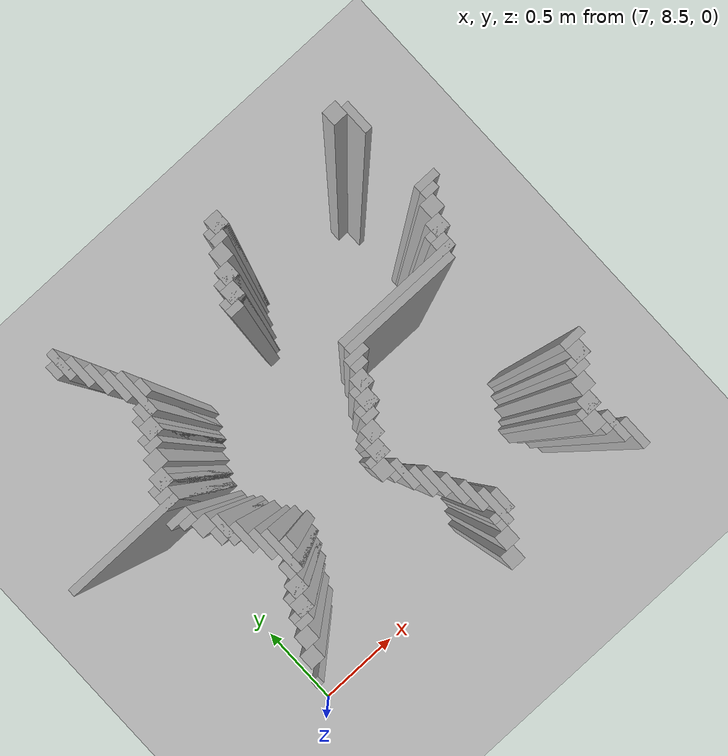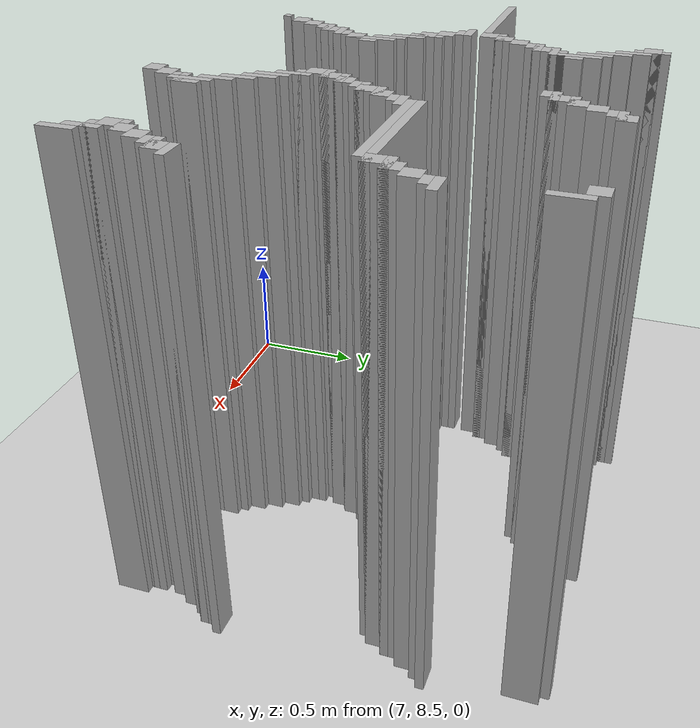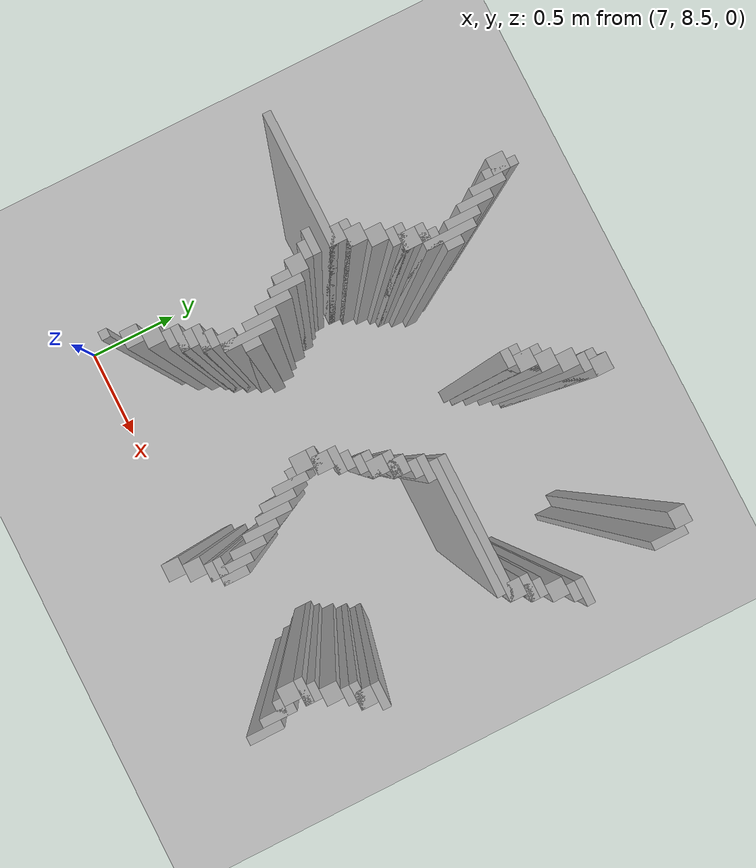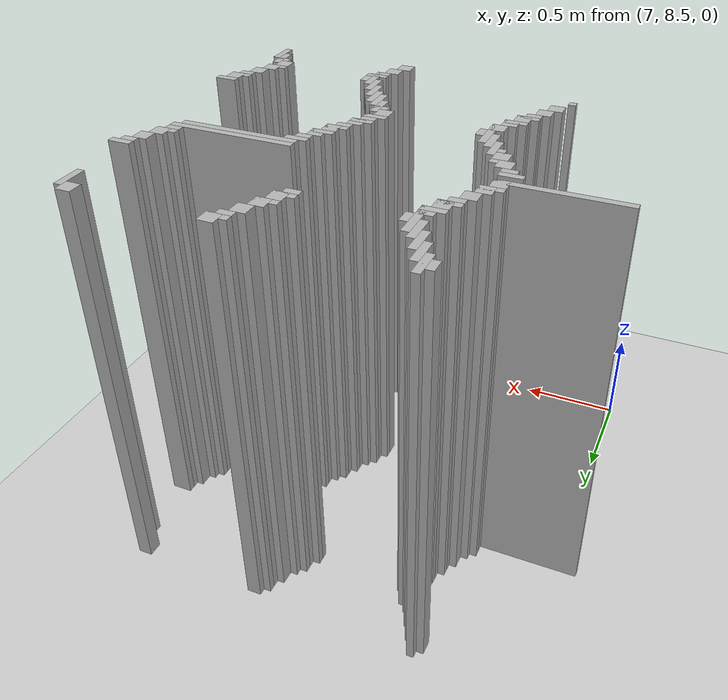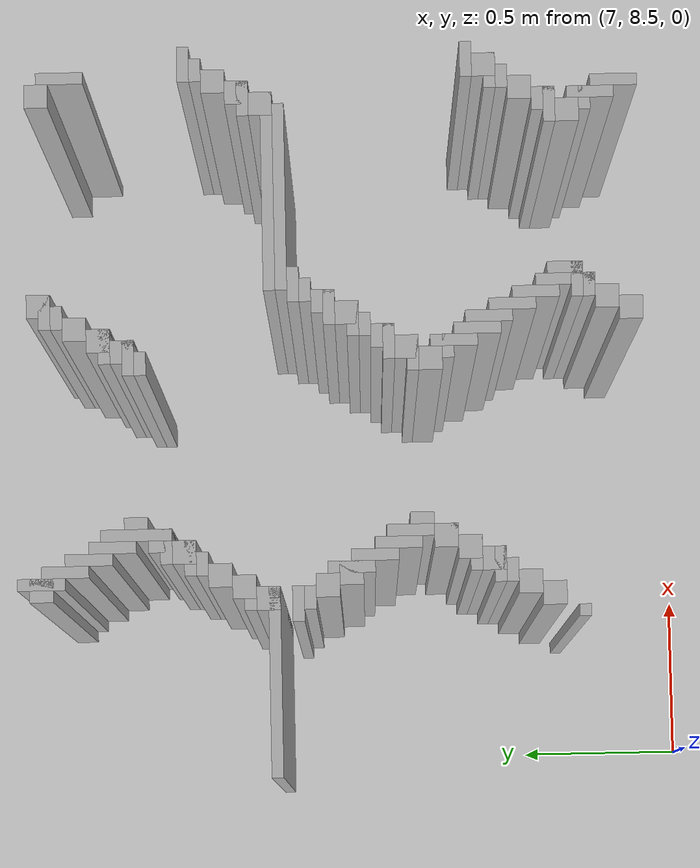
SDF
<sdf version="1.6">
 <world name="slam_world">
  <model name="ground_plane">
   <static>true</static>
   <link name="link">
    <collision name="collision">
     <geometry><plane><normal>0 0 1</normal><size>100 100</size></plane></geometry>
    </collision>
    <visual name="visual">
     <geometry><plane><normal>0 0 1</normal><size>100 100</size></plane></geometry>
     <material>
      <ambient>0.8 0.8 0.8 1</ambient>
      <diffuse>0.8 0.8 0.8 1</diffuse>
      <specular>0.8 0.8 0.8 1</specular>
     </material>
    </visual>
   </link>
  </model>
  <model name="wall_2324">
   <static>true</static>
   <pose>7.465197215777262 10.475638051044083 1.0 0 0 0</pose>
   <link name="link">
    <collision name="collision">
     <geometry><box><size>0.03480278422273782 0.13921113689095127 2.0</size></box></geometry>
    </collision>
    <visual name="visual">
     <geometry><box><size>0.03480278422273782 0.13921113689095127 2.0</size></box></geometry>
     <material><ambient>0.5 0.5 0.5 1</ambient><diffuse>0.7 0.7 0.7 1</diffuse></material>
    </visual>
   </link>
  </model>
  <model name="wall_2339">
   <static>true</static>
   <pose>7.447795823665893 10.475638051044083 1.0 0 0 0</pose>
   <link name="link">
    <collision name="collision">
     <geometry><box><size>0.06960556844547564 0.06960556844547564 2.0</size></box></geometry>
    </collision>
    <visual name="visual">
     <geometry><box><size>0.06960556844547564 0.06960556844547564 2.0</size></box></geometry>
     <material><ambient>0.5 0.5 0.5 1</ambient><diffuse>0.7 0.7 0.7 1</diffuse></material>
    </visual>
   </link>
  </model>
  <model name="wall_2340">
   <static>true</static>
   <pose>8.2830626450116 10.475638051044083 1.0 0 0 0</pose>
   <link name="link">
    <collision name="collision">
     <geometry><box><size>0.06960556844547564 0.06960556844547564 2.0</size></box></geometry>
    </collision>
    <visual name="visual">
     <geometry><box><size>0.06960556844547564 0.06960556844547564 2.0</size></box></geometry>
     <material><ambient>0.5 0.5 0.5 1</ambient><diffuse>0.7 0.7 0.7 1</diffuse></material>
    </visual>
   </link>
  </model>
  <model name="wall_2341">
   <static>true</static>
   <pose>8.909512761020881 10.475638051044083 1.0 0 0 0</pose>
   <link name="link">
    <collision name="collision">
     <geometry><box><size>0.06960556844547564 0.06960556844547564 2.0</size></box></geometry>
    </collision>
    <visual name="visual">
     <geometry><box><size>0.06960556844547564 0.06960556844547564 2.0</size></box></geometry>
     <material><ambient>0.5 0.5 0.5 1</ambient><diffuse>0.7 0.7 0.7 1</diffuse></material>
    </visual>
   </link>
  </model>
  <model name="wall_2354">
   <static>true</static>
   <pose>7.5 10.406032482598608 1.0 0 0 0</pose>
   <link name="link">
    <collision name="collision">
     <geometry><box><size>0.03480278422273782 0.13921113689095127 2.0</size></box></geometry>
    </collision>
    <visual name="visual">
     <geometry><box><size>0.03480278422273782 0.13921113689095127 2.0</size></box></geometry>
     <material><ambient>0.5 0.5 0.5 1</ambient><diffuse>0.7 0.7 0.7 1</diffuse></material>
    </visual>
   </link>
  </model>
  <model name="wall_2355">
   <static>true</static>
   <pose>8.265661252900232 10.458236658932714 1.0 0 0 0</pose>
   <link name="link">
    <collision name="collision">
     <geometry><box><size>0.10440835266821345 0.03480278422273782 2.0</size></box></geometry>
    </collision>
    <visual name="visual">
     <geometry><box><size>0.10440835266821345 0.03480278422273782 2.0</size></box></geometry>
     <material><ambient>0.5 0.5 0.5 1</ambient><diffuse>0.7 0.7 0.7 1</diffuse></material>
    </visual>
   </link>
  </model>
  <model name="wall_2356">
   <static>true</static>
   <pose>8.961716937354987 10.406032482598608 1.0 0 0 0</pose>
   <link name="link">
    <collision name="collision">
     <geometry><box><size>0.03480278422273782 0.13921113689095127 2.0</size></box></geometry>
    </collision>
    <visual name="visual">
     <geometry><box><size>0.03480278422273782 0.13921113689095127 2.0</size></box></geometry>
     <material><ambient>0.5 0.5 0.5 1</ambient><diffuse>0.7 0.7 0.7 1</diffuse></material>
    </visual>
   </link>
  </model>
  <model name="wall_2364">
   <static>true</static>
   <pose>8.248259860788863 10.423433874709977 1.0 0 0 0</pose>
   <link name="link">
    <collision name="collision">
     <geometry><box><size>0.06960556844547564 0.03480278422273782 2.0</size></box></geometry>
    </collision>
    <visual name="visual">
     <geometry><box><size>0.06960556844547564 0.03480278422273782 2.0</size></box></geometry>
     <material><ambient>0.5 0.5 0.5 1</ambient><diffuse>0.7 0.7 0.7 1</diffuse></material>
    </visual>
   </link>
  </model>
  <model name="wall_2374">
   <static>true</static>
   <pose>7.534802784222737 10.336426914153131 1.0 0 0 0</pose>
   <link name="link">
    <collision name="collision">
     <geometry><box><size>0.03480278422273782 0.13921113689095127 2.0</size></box></geometry>
    </collision>
    <visual name="visual">
     <geometry><box><size>0.03480278422273782 0.13921113689095127 2.0</size></box></geometry>
     <material><ambient>0.5 0.5 0.5 1</ambient><diffuse>0.7 0.7 0.7 1</diffuse></material>
    </visual>
   </link>
  </model>
  <model name="wall_2375">
   <static>true</static>
   <pose>8.213457076566124 10.37122969837587 1.0 0 0 0</pose>
   <link name="link">
    <collision name="collision">
     <geometry><box><size>0.06960556844547564 0.06960556844547564 2.0</size></box></geometry>
    </collision>
    <visual name="visual">
     <geometry><box><size>0.06960556844547564 0.06960556844547564 2.0</size></box></geometry>
     <material><ambient>0.5 0.5 0.5 1</ambient><diffuse>0.7 0.7 0.7 1</diffuse></material>
    </visual>
   </link>
  </model>
  <model name="wall_2389">
   <static>true</static>
   <pose>7.569605568445476 10.266821345707656 1.0 0 0 0</pose>
   <link name="link">
    <collision name="collision">
     <geometry><box><size>0.03480278422273782 0.13921113689095127 2.0</size></box></geometry>
    </collision>
    <visual name="visual">
     <geometry><box><size>0.03480278422273782 0.13921113689095127 2.0</size></box></geometry>
     <material><ambient>0.5 0.5 0.5 1</ambient><diffuse>0.7 0.7 0.7 1</diffuse></material>
    </visual>
   </link>
  </model>
  <model name="wall_2390">
   <static>true</static>
   <pose>8.178654292343387 10.301624129930394 1.0 0 0 0</pose>
   <link name="link">
    <collision name="collision">
     <geometry><box><size>0.06960556844547564 0.06960556844547564 2.0</size></box></geometry>
    </collision>
    <visual name="visual">
     <geometry><box><size>0.06960556844547564 0.06960556844547564 2.0</size></box></geometry>
     <material><ambient>0.5 0.5 0.5 1</ambient><diffuse>0.7 0.7 0.7 1</diffuse></material>
    </visual>
   </link>
  </model>
  <model name="wall_2404">
   <static>true</static>
   <pose>7.604408352668213 10.19721577726218 1.0 0 0 0</pose>
   <link name="link">
    <collision name="collision">
     <geometry><box><size>0.03480278422273782 0.2088167053364269 2.0</size></box></geometry>
    </collision>
    <visual name="visual">
     <geometry><box><size>0.03480278422273782 0.2088167053364269 2.0</size></box></geometry>
     <material><ambient>0.5 0.5 0.5 1</ambient><diffuse>0.7 0.7 0.7 1</diffuse></material>
    </visual>
   </link>
  </model>
  <model name="wall_2405">
   <static>true</static>
   <pose>8.161252900232018 10.284222737819025 1.0 0 0 0</pose>
   <link name="link">
    <collision name="collision">
     <geometry><box><size>0.10440835266821345 0.03480278422273782 2.0</size></box></geometry>
    </collision>
    <visual name="visual">
     <geometry><box><size>0.10440835266821345 0.03480278422273782 2.0</size></box></geometry>
     <material><ambient>0.5 0.5 0.5 1</ambient><diffuse>0.7 0.7 0.7 1</diffuse></material>
    </visual>
   </link>
  </model>
  <model name="wall_2414">
   <static>true</static>
   <pose>8.14385150812065 10.232018561484919 1.0 0 0 0</pose>
   <link name="link">
    <collision name="collision">
     <geometry><box><size>0.06960556844547564 0.06960556844547564 2.0</size></box></geometry>
    </collision>
    <visual name="visual">
     <geometry><box><size>0.06960556844547564 0.06960556844547564 2.0</size></box></geometry>
     <material><ambient>0.5 0.5 0.5 1</ambient><diffuse>0.7 0.7 0.7 1</diffuse></material>
    </visual>
   </link>
  </model>
  <model name="wall_2425">
   <static>true</static>
   <pose>7.6392111368909505 10.19721577726218 1.0 0 0 0</pose>
   <link name="link">
    <collision name="collision">
     <geometry><box><size>0.03480278422273782 0.06960556844547564 2.0</size></box></geometry>
    </collision>
    <visual name="visual">
     <geometry><box><size>0.03480278422273782 0.06960556844547564 2.0</size></box></geometry>
     <material><ambient>0.5 0.5 0.5 1</ambient><diffuse>0.7 0.7 0.7 1</diffuse></material>
    </visual>
   </link>
  </model>
  <model name="wall_2426">
   <static>true</static>
   <pose>8.12645011600928 10.214617169373549 1.0 0 0 0</pose>
   <link name="link">
    <collision name="collision">
     <geometry><box><size>0.10440835266821345 0.03480278422273782 2.0</size></box></geometry>
    </collision>
    <visual name="visual">
     <geometry><box><size>0.10440835266821345 0.03480278422273782 2.0</size></box></geometry>
     <material><ambient>0.5 0.5 0.5 1</ambient><diffuse>0.7 0.7 0.7 1</diffuse></material>
    </visual>
   </link>
  </model>
  <model name="wall_2435">
   <static>true</static>
   <pose>8.109048723897912 10.179814385150811 1.0 0 0 0</pose>
   <link name="link">
    <collision name="collision">
     <geometry><box><size>0.06960556844547564 0.03480278422273782 2.0</size></box></geometry>
    </collision>
    <visual name="visual">
     <geometry><box><size>0.06960556844547564 0.03480278422273782 2.0</size></box></geometry>
     <material><ambient>0.5 0.5 0.5 1</ambient><diffuse>0.7 0.7 0.7 1</diffuse></material>
    </visual>
   </link>
  </model>
  <model name="wall_2445">
   <static>true</static>
   <pose>7.587006960556844 10.127610208816705 1.0 0 0 0</pose>
   <link name="link">
    <collision name="collision">
     <geometry><box><size>0.06960556844547564 0.06960556844547564 2.0</size></box></geometry>
    </collision>
    <visual name="visual">
     <geometry><box><size>0.06960556844547564 0.06960556844547564 2.0</size></box></geometry>
     <material><ambient>0.5 0.5 0.5 1</ambient><diffuse>0.7 0.7 0.7 1</diffuse></material>
    </visual>
   </link>
  </model>
  <model name="wall_2459">
   <static>true</static>
   <pose>7.569605568445476 10.110208816705336 1.0 0 0 0</pose>
   <link name="link">
    <collision name="collision">
     <geometry><box><size>0.10440835266821345 0.03480278422273782 2.0</size></box></geometry>
    </collision>
    <visual name="visual">
     <geometry><box><size>0.10440835266821345 0.03480278422273782 2.0</size></box></geometry>
     <material><ambient>0.5 0.5 0.5 1</ambient><diffuse>0.7 0.7 0.7 1</diffuse></material>
    </visual>
   </link>
  </model>
  <model name="wall_2473">
   <static>true</static>
   <pose>7.552204176334106 10.058004640371228 1.0 0 0 0</pose>
   <link name="link">
    <collision name="collision">
     <geometry><box><size>0.06960556844547564 0.06960556844547564 2.0</size></box></geometry>
    </collision>
    <visual name="visual">
     <geometry><box><size>0.06960556844547564 0.06960556844547564 2.0</size></box></geometry>
     <material><ambient>0.5 0.5 0.5 1</ambient><diffuse>0.7 0.7 0.7 1</diffuse></material>
    </visual>
   </link>
  </model>
  <model name="wall_2487">
   <static>true</static>
   <pose>7.534802784222737 10.04060324825986 1.0 0 0 0</pose>
   <link name="link">
    <collision name="collision">
     <geometry><box><size>0.10440835266821345 0.03480278422273782 2.0</size></box></geometry>
    </collision>
    <visual name="visual">
     <geometry><box><size>0.10440835266821345 0.03480278422273782 2.0</size></box></geometry>
     <material><ambient>0.5 0.5 0.5 1</ambient><diffuse>0.7 0.7 0.7 1</diffuse></material>
    </visual>
   </link>
  </model>
  <model name="wall_2488">
   <static>true</static>
   <pose>8.996519721577727 10.04060324825986 1.0 0 0 0</pose>
   <link name="link">
    <collision name="collision">
     <geometry><box><size>0.10440835266821345 0.03480278422273782 2.0</size></box></geometry>
    </collision>
    <visual name="visual">
     <geometry><box><size>0.10440835266821345 0.03480278422273782 2.0</size></box></geometry>
     <material><ambient>0.5 0.5 0.5 1</ambient><diffuse>0.7 0.7 0.7 1</diffuse></material>
    </visual>
   </link>
  </model>
  <model name="wall_2497">
   <static>true</static>
   <pose>7.517401392111369 10.005800464037122 1.0 0 0 0</pose>
   <link name="link">
    <collision name="collision">
     <geometry><box><size>0.06960556844547564 0.03480278422273782 2.0</size></box></geometry>
    </collision>
    <visual name="visual">
     <geometry><box><size>0.06960556844547564 0.03480278422273782 2.0</size></box></geometry>
     <material><ambient>0.5 0.5 0.5 1</ambient><diffuse>0.7 0.7 0.7 1</diffuse></material>
    </visual>
   </link>
  </model>
  <model name="wall_2498">
   <static>true</static>
   <pose>8.979118329466356 10.005800464037122 1.0 0 0 0</pose>
   <link name="link">
    <collision name="collision">
     <geometry><box><size>0.06960556844547564 0.03480278422273782 2.0</size></box></geometry>
    </collision>
    <visual name="visual">
     <geometry><box><size>0.06960556844547564 0.03480278422273782 2.0</size></box></geometry>
     <material><ambient>0.5 0.5 0.5 1</ambient><diffuse>0.7 0.7 0.7 1</diffuse></material>
    </visual>
   </link>
  </model>
  <model name="wall_2510">
   <static>true</static>
   <pose>7.48259860788863 9.953596287703016 1.0 0 0 0</pose>
   <link name="link">
    <collision name="collision">
     <geometry><box><size>0.06960556844547564 0.06960556844547564 2.0</size></box></geometry>
    </collision>
    <visual name="visual">
     <geometry><box><size>0.06960556844547564 0.06960556844547564 2.0</size></box></geometry>
     <material><ambient>0.5 0.5 0.5 1</ambient><diffuse>0.7 0.7 0.7 1</diffuse></material>
    </visual>
   </link>
  </model>
  <model name="wall_2511">
   <static>true</static>
   <pose>8.944315545243619 9.953596287703016 1.0 0 0 0</pose>
   <link name="link">
    <collision name="collision">
     <geometry><box><size>0.06960556844547564 0.06960556844547564 2.0</size></box></geometry>
    </collision>
    <visual name="visual">
     <geometry><box><size>0.06960556844547564 0.06960556844547564 2.0</size></box></geometry>
     <material><ambient>0.5 0.5 0.5 1</ambient><diffuse>0.7 0.7 0.7 1</diffuse></material>
    </visual>
   </link>
  </model>
  <model name="wall_2524">
   <static>true</static>
   <pose>7.447795823665893 9.88399071925754 1.0 0 0 0</pose>
   <link name="link">
    <collision name="collision">
     <geometry><box><size>0.06960556844547564 0.06960556844547564 2.0</size></box></geometry>
    </collision>
    <visual name="visual">
     <geometry><box><size>0.06960556844547564 0.06960556844547564 2.0</size></box></geometry>
     <material><ambient>0.5 0.5 0.5 1</ambient><diffuse>0.7 0.7 0.7 1</diffuse></material>
    </visual>
   </link>
  </model>
  <model name="wall_2525">
   <static>true</static>
   <pose>8.909512761020881 9.88399071925754 1.0 0 0 0</pose>
   <link name="link">
    <collision name="collision">
     <geometry><box><size>0.06960556844547564 0.06960556844547564 2.0</size></box></geometry>
    </collision>
    <visual name="visual">
     <geometry><box><size>0.06960556844547564 0.06960556844547564 2.0</size></box></geometry>
     <material><ambient>0.5 0.5 0.5 1</ambient><diffuse>0.7 0.7 0.7 1</diffuse></material>
    </visual>
   </link>
  </model>
  <model name="wall_2538">
   <static>true</static>
   <pose>7.430394431554524 9.86658932714617 1.0 0 0 0</pose>
   <link name="link">
    <collision name="collision">
     <geometry><box><size>0.10440835266821345 0.03480278422273782 2.0</size></box></geometry>
    </collision>
    <visual name="visual">
     <geometry><box><size>0.10440835266821345 0.03480278422273782 2.0</size></box></geometry>
     <material><ambient>0.5 0.5 0.5 1</ambient><diffuse>0.7 0.7 0.7 1</diffuse></material>
    </visual>
   </link>
  </model>
  <model name="wall_2539">
   <static>true</static>
   <pose>8.892111368909513 9.86658932714617 1.0 0 0 0</pose>
   <link name="link">
    <collision name="collision">
     <geometry><box><size>0.10440835266821345 0.03480278422273782 2.0</size></box></geometry>
    </collision>
    <visual name="visual">
     <geometry><box><size>0.10440835266821345 0.03480278422273782 2.0</size></box></geometry>
     <material><ambient>0.5 0.5 0.5 1</ambient><diffuse>0.7 0.7 0.7 1</diffuse></material>
    </visual>
   </link>
  </model>
  <model name="wall_2548">
   <static>true</static>
   <pose>7.412993039443156 9.814385150812065 1.0 0 0 0</pose>
   <link name="link">
    <collision name="collision">
     <geometry><box><size>0.06960556844547564 0.06960556844547564 2.0</size></box></geometry>
    </collision>
    <visual name="visual">
     <geometry><box><size>0.06960556844547564 0.06960556844547564 2.0</size></box></geometry>
     <material><ambient>0.5 0.5 0.5 1</ambient><diffuse>0.7 0.7 0.7 1</diffuse></material>
    </visual>
   </link>
  </model>
  <model name="wall_2549">
   <static>true</static>
   <pose>8.874709976798144 9.814385150812065 1.0 0 0 0</pose>
   <link name="link">
    <collision name="collision">
     <geometry><box><size>0.06960556844547564 0.06960556844547564 2.0</size></box></geometry>
    </collision>
    <visual name="visual">
     <geometry><box><size>0.06960556844547564 0.06960556844547564 2.0</size></box></geometry>
     <material><ambient>0.5 0.5 0.5 1</ambient><diffuse>0.7 0.7 0.7 1</diffuse></material>
    </visual>
   </link>
  </model>
  <model name="wall_2560">
   <static>true</static>
   <pose>7.16937354988399 9.796983758700696 1.0 0 0 0</pose>
   <link name="link">
    <collision name="collision">
     <geometry><box><size>0.5568445475638051 0.03480278422273782 2.0</size></box></geometry>
    </collision>
    <visual name="visual">
     <geometry><box><size>0.5568445475638051 0.03480278422273782 2.0</size></box></geometry>
     <material><ambient>0.5 0.5 0.5 1</ambient><diffuse>0.7 0.7 0.7 1</diffuse></material>
    </visual>
   </link>
  </model>
  <model name="wall_2561">
   <static>true</static>
   <pose>8.61368909512761 9.796983758700696 1.0 0 0 0</pose>
   <link name="link">
    <collision name="collision">
     <geometry><box><size>0.5916473317865429 0.03480278422273782 2.0</size></box></geometry>
    </collision>
    <visual name="visual">
     <geometry><box><size>0.5916473317865429 0.03480278422273782 2.0</size></box></geometry>
     <material><ambient>0.5 0.5 0.5 1</ambient><diffuse>0.7 0.7 0.7 1</diffuse></material>
    </visual>
   </link>
  </model>
  <model name="wall_2570">
   <static>true</static>
   <pose>8.596287703016241 9.762180974477959 1.0 0 0 0</pose>
   <link name="link">
    <collision name="collision">
     <geometry><box><size>0.5568445475638051 0.03480278422273782 2.0</size></box></geometry>
    </collision>
    <visual name="visual">
     <geometry><box><size>0.5568445475638051 0.03480278422273782 2.0</size></box></geometry>
     <material><ambient>0.5 0.5 0.5 1</ambient><diffuse>0.7 0.7 0.7 1</diffuse></material>
    </visual>
   </link>
  </model>
  <model name="wall_2582">
   <static>true</static>
   <pose>7.395591647331786 9.72737819025522 1.0 0 0 0</pose>
   <link name="link">
    <collision name="collision">
     <geometry><box><size>0.10440835266821345 0.03480278422273782 2.0</size></box></geometry>
    </collision>
    <visual name="visual">
     <geometry><box><size>0.10440835266821345 0.03480278422273782 2.0</size></box></geometry>
     <material><ambient>0.5 0.5 0.5 1</ambient><diffuse>0.7 0.7 0.7 1</diffuse></material>
    </visual>
   </link>
  </model>
  <model name="wall_2583">
   <static>true</static>
   <pose>8.335266821345707 9.72737819025522 1.0 0 0 0</pose>
   <link name="link">
    <collision name="collision">
     <geometry><box><size>0.10440835266821345 0.03480278422273782 2.0</size></box></geometry>
    </collision>
    <visual name="visual">
     <geometry><box><size>0.10440835266821345 0.03480278422273782 2.0</size></box></geometry>
     <material><ambient>0.5 0.5 0.5 1</ambient><diffuse>0.7 0.7 0.7 1</diffuse></material>
    </visual>
   </link>
  </model>
  <model name="wall_2593">
   <static>true</static>
   <pose>7.412993039443156 9.692575406032482 1.0 0 0 0</pose>
   <link name="link">
    <collision name="collision">
     <geometry><box><size>0.06960556844547564 0.03480278422273782 2.0</size></box></geometry>
    </collision>
    <visual name="visual">
     <geometry><box><size>0.06960556844547564 0.03480278422273782 2.0</size></box></geometry>
     <material><ambient>0.5 0.5 0.5 1</ambient><diffuse>0.7 0.7 0.7 1</diffuse></material>
    </visual>
   </link>
  </model>
  <model name="wall_2594">
   <static>true</static>
   <pose>8.317865429234338 9.692575406032482 1.0 0 0 0</pose>
   <link name="link">
    <collision name="collision">
     <geometry><box><size>0.06960556844547564 0.03480278422273782 2.0</size></box></geometry>
    </collision>
    <visual name="visual">
     <geometry><box><size>0.06960556844547564 0.03480278422273782 2.0</size></box></geometry>
     <material><ambient>0.5 0.5 0.5 1</ambient><diffuse>0.7 0.7 0.7 1</diffuse></material>
    </visual>
   </link>
  </model>
  <model name="wall_2607">
   <static>true</static>
   <pose>7.447795823665893 9.640371229698376 1.0 0 0 0</pose>
   <link name="link">
    <collision name="collision">
     <geometry><box><size>0.06960556844547564 0.06960556844547564 2.0</size></box></geometry>
    </collision>
    <visual name="visual">
     <geometry><box><size>0.06960556844547564 0.06960556844547564 2.0</size></box></geometry>
     <material><ambient>0.5 0.5 0.5 1</ambient><diffuse>0.7 0.7 0.7 1</diffuse></material>
    </visual>
   </link>
  </model>
  <model name="wall_2608">
   <static>true</static>
   <pose>8.2830626450116 9.640371229698376 1.0 0 0 0</pose>
   <link name="link">
    <collision name="collision">
     <geometry><box><size>0.06960556844547564 0.06960556844547564 2.0</size></box></geometry>
    </collision>
    <visual name="visual">
     <geometry><box><size>0.06960556844547564 0.06960556844547564 2.0</size></box></geometry>
     <material><ambient>0.5 0.5 0.5 1</ambient><diffuse>0.7 0.7 0.7 1</diffuse></material>
    </visual>
   </link>
  </model>
  <model name="wall_2621">
   <static>true</static>
   <pose>7.5 9.5707656612529 1.0 0 0 0</pose>
   <link name="link">
    <collision name="collision">
     <geometry><box><size>0.03480278422273782 0.13921113689095127 2.0</size></box></geometry>
    </collision>
    <visual name="visual">
     <geometry><box><size>0.03480278422273782 0.13921113689095127 2.0</size></box></geometry>
     <material><ambient>0.5 0.5 0.5 1</ambient><diffuse>0.7 0.7 0.7 1</diffuse></material>
    </visual>
   </link>
  </model>
  <model name="wall_2622">
   <static>true</static>
   <pose>8.265661252900232 9.622969837587007 1.0 0 0 0</pose>
   <link name="link">
    <collision name="collision">
     <geometry><box><size>0.10440835266821345 0.03480278422273782 2.0</size></box></geometry>
    </collision>
    <visual name="visual">
     <geometry><box><size>0.10440835266821345 0.03480278422273782 2.0</size></box></geometry>
     <material><ambient>0.5 0.5 0.5 1</ambient><diffuse>0.7 0.7 0.7 1</diffuse></material>
    </visual>
   </link>
  </model>
  <model name="wall_2635">
   <static>true</static>
   <pose>7.48259860788863 9.5707656612529 1.0 0 0 0</pose>
   <link name="link">
    <collision name="collision">
     <geometry><box><size>0.06960556844547564 0.06960556844547564 2.0</size></box></geometry>
    </collision>
    <visual name="visual">
     <geometry><box><size>0.06960556844547564 0.06960556844547564 2.0</size></box></geometry>
     <material><ambient>0.5 0.5 0.5 1</ambient><diffuse>0.7 0.7 0.7 1</diffuse></material>
    </visual>
   </link>
  </model>
  <model name="wall_2636">
   <static>true</static>
   <pose>8.248259860788863 9.5707656612529 1.0 0 0 0</pose>
   <link name="link">
    <collision name="collision">
     <geometry><box><size>0.06960556844547564 0.06960556844547564 2.0</size></box></geometry>
    </collision>
    <visual name="visual">
     <geometry><box><size>0.06960556844547564 0.06960556844547564 2.0</size></box></geometry>
     <material><ambient>0.5 0.5 0.5 1</ambient><diffuse>0.7 0.7 0.7 1</diffuse></material>
    </visual>
   </link>
  </model>
  <model name="wall_2649">
   <static>true</static>
   <pose>7.534802784222737 9.501160092807424 1.0 0 0 0</pose>
   <link name="link">
    <collision name="collision">
     <geometry><box><size>0.03480278422273782 0.13921113689095127 2.0</size></box></geometry>
    </collision>
    <visual name="visual">
     <geometry><box><size>0.03480278422273782 0.13921113689095127 2.0</size></box></geometry>
     <material><ambient>0.5 0.5 0.5 1</ambient><diffuse>0.7 0.7 0.7 1</diffuse></material>
    </visual>
   </link>
  </model>
  <model name="wall_2650">
   <static>true</static>
   <pose>8.230858468677495 9.55336426914153 1.0 0 0 0</pose>
   <link name="link">
    <collision name="collision">
     <geometry><box><size>0.10440835266821345 0.03480278422273782 2.0</size></box></geometry>
    </collision>
    <visual name="visual">
     <geometry><box><size>0.10440835266821345 0.03480278422273782 2.0</size></box></geometry>
     <material><ambient>0.5 0.5 0.5 1</ambient><diffuse>0.7 0.7 0.7 1</diffuse></material>
    </visual>
   </link>
  </model>
  <model name="wall_2659">
   <static>true</static>
   <pose>8.213457076566124 9.518561484918793 1.0 0 0 0</pose>
   <link name="link">
    <collision name="collision">
     <geometry><box><size>0.06960556844547564 0.03480278422273782 2.0</size></box></geometry>
    </collision>
    <visual name="visual">
     <geometry><box><size>0.06960556844547564 0.03480278422273782 2.0</size></box></geometry>
     <material><ambient>0.5 0.5 0.5 1</ambient><diffuse>0.7 0.7 0.7 1</diffuse></material>
    </visual>
   </link>
  </model>
  <model name="wall_2668">
   <static>true</static>
   <pose>7.569605568445476 9.431554524361948 1.0 0 0 0</pose>
   <link name="link">
    <collision name="collision">
     <geometry><box><size>0.03480278422273782 0.13921113689095127 2.0</size></box></geometry>
    </collision>
    <visual name="visual">
     <geometry><box><size>0.03480278422273782 0.13921113689095127 2.0</size></box></geometry>
     <material><ambient>0.5 0.5 0.5 1</ambient><diffuse>0.7 0.7 0.7 1</diffuse></material>
    </visual>
   </link>
  </model>
  <model name="wall_2669">
   <static>true</static>
   <pose>8.178654292343387 9.466357308584687 1.0 0 0 0</pose>
   <link name="link">
    <collision name="collision">
     <geometry><box><size>0.06960556844547564 0.06960556844547564 2.0</size></box></geometry>
    </collision>
    <visual name="visual">
     <geometry><box><size>0.06960556844547564 0.06960556844547564 2.0</size></box></geometry>
     <material><ambient>0.5 0.5 0.5 1</ambient><diffuse>0.7 0.7 0.7 1</diffuse></material>
    </visual>
   </link>
  </model>
  <model name="wall_2682">
   <static>true</static>
   <pose>7.604408352668213 9.361948955916473 1.0 0 0 0</pose>
   <link name="link">
    <collision name="collision">
     <geometry><box><size>0.03480278422273782 0.2088167053364269 2.0</size></box></geometry>
    </collision>
    <visual name="visual">
     <geometry><box><size>0.03480278422273782 0.2088167053364269 2.0</size></box></geometry>
     <material><ambient>0.5 0.5 0.5 1</ambient><diffuse>0.7 0.7 0.7 1</diffuse></material>
    </visual>
   </link>
  </model>
  <model name="wall_2683">
   <static>true</static>
   <pose>8.161252900232018 9.448955916473318 1.0 0 0 0</pose>
   <link name="link">
    <collision name="collision">
     <geometry><box><size>0.10440835266821345 0.03480278422273782 2.0</size></box></geometry>
    </collision>
    <visual name="visual">
     <geometry><box><size>0.10440835266821345 0.03480278422273782 2.0</size></box></geometry>
     <material><ambient>0.5 0.5 0.5 1</ambient><diffuse>0.7 0.7 0.7 1</diffuse></material>
    </visual>
   </link>
  </model>
  <model name="wall_2692">
   <static>true</static>
   <pose>8.14385150812065 9.39675174013921 1.0 0 0 0</pose>
   <link name="link">
    <collision name="collision">
     <geometry><box><size>0.06960556844547564 0.06960556844547564 2.0</size></box></geometry>
    </collision>
    <visual name="visual">
     <geometry><box><size>0.06960556844547564 0.06960556844547564 2.0</size></box></geometry>
     <material><ambient>0.5 0.5 0.5 1</ambient><diffuse>0.7 0.7 0.7 1</diffuse></material>
    </visual>
   </link>
  </model>
  <model name="wall_2700">
   <static>true</static>
   <pose>7.6392111368909505 9.361948955916473 1.0 0 0 0</pose>
   <link name="link">
    <collision name="collision">
     <geometry><box><size>0.03480278422273782 0.06960556844547564 2.0</size></box></geometry>
    </collision>
    <visual name="visual">
     <geometry><box><size>0.03480278422273782 0.06960556844547564 2.0</size></box></geometry>
     <material><ambient>0.5 0.5 0.5 1</ambient><diffuse>0.7 0.7 0.7 1</diffuse></material>
    </visual>
   </link>
  </model>
  <model name="wall_2701">
   <static>true</static>
   <pose>8.12645011600928 9.379350348027842 1.0 0 0 0</pose>
   <link name="link">
    <collision name="collision">
     <geometry><box><size>0.10440835266821345 0.03480278422273782 2.0</size></box></geometry>
    </collision>
    <visual name="visual">
     <geometry><box><size>0.10440835266821345 0.03480278422273782 2.0</size></box></geometry>
     <material><ambient>0.5 0.5 0.5 1</ambient><diffuse>0.7 0.7 0.7 1</diffuse></material>
    </visual>
   </link>
  </model>
  <model name="wall_2712">
   <static>true</static>
   <pose>8.109048723897912 9.327146171693736 1.0 0 0 0</pose>
   <link name="link">
    <collision name="collision">
     <geometry><box><size>0.06960556844547564 0.06960556844547564 2.0</size></box></geometry>
    </collision>
    <visual name="visual">
     <geometry><box><size>0.06960556844547564 0.06960556844547564 2.0</size></box></geometry>
     <material><ambient>0.5 0.5 0.5 1</ambient><diffuse>0.7 0.7 0.7 1</diffuse></material>
    </visual>
   </link>
  </model>
  <model name="wall_2724">
   <static>true</static>
   <pose>7.587006960556844 9.292343387470996 1.0 0 0 0</pose>
   <link name="link">
    <collision name="collision">
     <geometry><box><size>0.06960556844547564 0.06960556844547564 2.0</size></box></geometry>
    </collision>
    <visual name="visual">
     <geometry><box><size>0.06960556844547564 0.06960556844547564 2.0</size></box></geometry>
     <material><ambient>0.5 0.5 0.5 1</ambient><diffuse>0.7 0.7 0.7 1</diffuse></material>
    </visual>
   </link>
  </model>
  <model name="wall_2725">
   <static>true</static>
   <pose>8.161252900232018 9.257540603248259 1.0 0 0 0</pose>
   <link name="link">
    <collision name="collision">
     <geometry><box><size>0.03480278422273782 0.13921113689095127 2.0</size></box></geometry>
    </collision>
    <visual name="visual">
     <geometry><box><size>0.03480278422273782 0.13921113689095127 2.0</size></box></geometry>
     <material><ambient>0.5 0.5 0.5 1</ambient><diffuse>0.7 0.7 0.7 1</diffuse></material>
    </visual>
   </link>
  </model>
  <model name="wall_2739">
   <static>true</static>
   <pose>8.14385150812065 9.274941995359628 1.0 0 0 0</pose>
   <link name="link">
    <collision name="collision">
     <geometry><box><size>0.06960556844547564 0.03480278422273782 2.0</size></box></geometry>
    </collision>
    <visual name="visual">
     <geometry><box><size>0.06960556844547564 0.03480278422273782 2.0</size></box></geometry>
     <material><ambient>0.5 0.5 0.5 1</ambient><diffuse>0.7 0.7 0.7 1</diffuse></material>
    </visual>
   </link>
  </model>
  <model name="wall_2753">
   <static>true</static>
   <pose>7.552204176334106 9.222737819025522 1.0 0 0 0</pose>
   <link name="link">
    <collision name="collision">
     <geometry><box><size>0.06960556844547564 0.06960556844547564 2.0</size></box></geometry>
    </collision>
    <visual name="visual">
     <geometry><box><size>0.06960556844547564 0.06960556844547564 2.0</size></box></geometry>
     <material><ambient>0.5 0.5 0.5 1</ambient><diffuse>0.7 0.7 0.7 1</diffuse></material>
    </visual>
   </link>
  </model>
  <model name="wall_2754">
   <static>true</static>
   <pose>8.196055684454755 9.187935034802784 1.0 0 0 0</pose>
   <link name="link">
    <collision name="collision">
     <geometry><box><size>0.03480278422273782 0.13921113689095127 2.0</size></box></geometry>
    </collision>
    <visual name="visual">
     <geometry><box><size>0.03480278422273782 0.13921113689095127 2.0</size></box></geometry>
     <material><ambient>0.5 0.5 0.5 1</ambient><diffuse>0.7 0.7 0.7 1</diffuse></material>
    </visual>
   </link>
  </model>
  <model name="wall_2769">
   <static>true</static>
   <pose>7.534802784222737 9.205336426914153 1.0 0 0 0</pose>
   <link name="link">
    <collision name="collision">
     <geometry><box><size>0.10440835266821345 0.03480278422273782 2.0</size></box></geometry>
    </collision>
    <visual name="visual">
     <geometry><box><size>0.10440835266821345 0.03480278422273782 2.0</size></box></geometry>
     <material><ambient>0.5 0.5 0.5 1</ambient><diffuse>0.7 0.7 0.7 1</diffuse></material>
    </visual>
   </link>
  </model>
  <model name="wall_2770">
   <static>true</static>
   <pose>8.230858468677495 9.153132250580047 1.0 0 0 0</pose>
   <link name="link">
    <collision name="collision">
     <geometry><box><size>0.03480278422273782 0.13921113689095127 2.0</size></box></geometry>
    </collision>
    <visual name="visual">
     <geometry><box><size>0.03480278422273782 0.13921113689095127 2.0</size></box></geometry>
     <material><ambient>0.5 0.5 0.5 1</ambient><diffuse>0.7 0.7 0.7 1</diffuse></material>
    </visual>
   </link>
  </model>
  <model name="wall_2771">
   <static>true</static>
   <pose>8.996519721577727 9.205336426914153 1.0 0 0 0</pose>
   <link name="link">
    <collision name="collision">
     <geometry><box><size>0.10440835266821345 0.03480278422273782 2.0</size></box></geometry>
    </collision>
    <visual name="visual">
     <geometry><box><size>0.10440835266821345 0.03480278422273782 2.0</size></box></geometry>
     <material><ambient>0.5 0.5 0.5 1</ambient><diffuse>0.7 0.7 0.7 1</diffuse></material>
    </visual>
   </link>
  </model>
  <model name="wall_2784">
   <static>true</static>
   <pose>7.517401392111369 9.153132250580047 1.0 0 0 0</pose>
   <link name="link">
    <collision name="collision">
     <geometry><box><size>0.06960556844547564 0.06960556844547564 2.0</size></box></geometry>
    </collision>
    <visual name="visual">
     <geometry><box><size>0.06960556844547564 0.06960556844547564 2.0</size></box></geometry>
     <material><ambient>0.5 0.5 0.5 1</ambient><diffuse>0.7 0.7 0.7 1</diffuse></material>
    </visual>
   </link>
  </model>
  <model name="wall_2785">
   <static>true</static>
   <pose>8.979118329466356 9.153132250580047 1.0 0 0 0</pose>
   <link name="link">
    <collision name="collision">
     <geometry><box><size>0.06960556844547564 0.06960556844547564 2.0</size></box></geometry>
    </collision>
    <visual name="visual">
     <geometry><box><size>0.06960556844547564 0.06960556844547564 2.0</size></box></geometry>
     <material><ambient>0.5 0.5 0.5 1</ambient><diffuse>0.7 0.7 0.7 1</diffuse></material>
    </visual>
   </link>
  </model>
  <model name="wall_2797">
   <static>true</static>
   <pose>7.5 9.135730858468676 1.0 0 0 0</pose>
   <link name="link">
    <collision name="collision">
     <geometry><box><size>0.10440835266821345 0.03480278422273782 2.0</size></box></geometry>
    </collision>
    <visual name="visual">
     <geometry><box><size>0.10440835266821345 0.03480278422273782 2.0</size></box></geometry>
     <material><ambient>0.5 0.5 0.5 1</ambient><diffuse>0.7 0.7 0.7 1</diffuse></material>
    </visual>
   </link>
  </model>
  <model name="wall_2798">
   <static>true</static>
   <pose>8.265661252900232 9.08352668213457 1.0 0 0 0</pose>
   <link name="link">
    <collision name="collision">
     <geometry><box><size>0.03480278422273782 0.13921113689095127 2.0</size></box></geometry>
    </collision>
    <visual name="visual">
     <geometry><box><size>0.03480278422273782 0.13921113689095127 2.0</size></box></geometry>
     <material><ambient>0.5 0.5 0.5 1</ambient><diffuse>0.7 0.7 0.7 1</diffuse></material>
    </visual>
   </link>
  </model>
  <model name="wall_2799">
   <static>true</static>
   <pose>8.961716937354987 9.135730858468676 1.0 0 0 0</pose>
   <link name="link">
    <collision name="collision">
     <geometry><box><size>0.10440835266821345 0.03480278422273782 2.0</size></box></geometry>
    </collision>
    <visual name="visual">
     <geometry><box><size>0.10440835266821345 0.03480278422273782 2.0</size></box></geometry>
     <material><ambient>0.5 0.5 0.5 1</ambient><diffuse>0.7 0.7 0.7 1</diffuse></material>
    </visual>
   </link>
  </model>
  <model name="wall_2810">
   <static>true</static>
   <pose>7.48259860788863 9.100928074245939 1.0 0 0 0</pose>
   <link name="link">
    <collision name="collision">
     <geometry><box><size>0.06960556844547564 0.03480278422273782 2.0</size></box></geometry>
    </collision>
    <visual name="visual">
     <geometry><box><size>0.06960556844547564 0.03480278422273782 2.0</size></box></geometry>
     <material><ambient>0.5 0.5 0.5 1</ambient><diffuse>0.7 0.7 0.7 1</diffuse></material>
    </visual>
   </link>
  </model>
  <model name="wall_2811">
   <static>true</static>
   <pose>8.944315545243619 9.100928074245939 1.0 0 0 0</pose>
   <link name="link">
    <collision name="collision">
     <geometry><box><size>0.06960556844547564 0.03480278422273782 2.0</size></box></geometry>
    </collision>
    <visual name="visual">
     <geometry><box><size>0.06960556844547564 0.03480278422273782 2.0</size></box></geometry>
     <material><ambient>0.5 0.5 0.5 1</ambient><diffuse>0.7 0.7 0.7 1</diffuse></material>
    </visual>
   </link>
  </model>
  <model name="wall_2822">
   <static>true</static>
   <pose>7.447795823665893 9.048723897911833 1.0 0 0 0</pose>
   <link name="link">
    <collision name="collision">
     <geometry><box><size>0.06960556844547564 0.06960556844547564 2.0</size></box></geometry>
    </collision>
    <visual name="visual">
     <geometry><box><size>0.06960556844547564 0.06960556844547564 2.0</size></box></geometry>
     <material><ambient>0.5 0.5 0.5 1</ambient><diffuse>0.7 0.7 0.7 1</diffuse></material>
    </visual>
   </link>
  </model>
  <model name="wall_2823">
   <static>true</static>
   <pose>8.30046403712297 9.013921113689095 1.0 0 0 0</pose>
   <link name="link">
    <collision name="collision">
     <geometry><box><size>0.03480278422273782 0.13921113689095127 2.0</size></box></geometry>
    </collision>
    <visual name="visual">
     <geometry><box><size>0.03480278422273782 0.13921113689095127 2.0</size></box></geometry>
     <material><ambient>0.5 0.5 0.5 1</ambient><diffuse>0.7 0.7 0.7 1</diffuse></material>
    </visual>
   </link>
  </model>
  <model name="wall_2824">
   <static>true</static>
   <pose>8.909512761020881 9.048723897911833 1.0 0 0 0</pose>
   <link name="link">
    <collision name="collision">
     <geometry><box><size>0.06960556844547564 0.06960556844547564 2.0</size></box></geometry>
    </collision>
    <visual name="visual">
     <geometry><box><size>0.06960556844547564 0.06960556844547564 2.0</size></box></geometry>
     <material><ambient>0.5 0.5 0.5 1</ambient><diffuse>0.7 0.7 0.7 1</diffuse></material>
    </visual>
   </link>
  </model>
  <model name="wall_2838">
   <static>true</static>
   <pose>7.412993039443156 8.979118329466356 1.0 0 0 0</pose>
   <link name="link">
    <collision name="collision">
     <geometry><box><size>0.06960556844547564 0.06960556844547564 2.0</size></box></geometry>
    </collision>
    <visual name="visual">
     <geometry><box><size>0.06960556844547564 0.06960556844547564 2.0</size></box></geometry>
     <material><ambient>0.5 0.5 0.5 1</ambient><diffuse>0.7 0.7 0.7 1</diffuse></material>
    </visual>
   </link>
  </model>
  <model name="wall_2839">
   <static>true</static>
   <pose>8.335266821345707 8.92691415313225 1.0 0 0 0</pose>
   <link name="link">
    <collision name="collision">
     <geometry><box><size>0.03480278422273782 0.17401392111368907 2.0</size></box></geometry>
    </collision>
    <visual name="visual">
     <geometry><box><size>0.03480278422273782 0.17401392111368907 2.0</size></box></geometry>
     <material><ambient>0.5 0.5 0.5 1</ambient><diffuse>0.7 0.7 0.7 1</diffuse></material>
    </visual>
   </link>
  </model>
  <model name="wall_2840">
   <static>true</static>
   <pose>8.874709976798144 8.979118329466356 1.0 0 0 0</pose>
   <link name="link">
    <collision name="collision">
     <geometry><box><size>0.06960556844547564 0.06960556844547564 2.0</size></box></geometry>
    </collision>
    <visual name="visual">
     <geometry><box><size>0.06960556844547564 0.06960556844547564 2.0</size></box></geometry>
     <material><ambient>0.5 0.5 0.5 1</ambient><diffuse>0.7 0.7 0.7 1</diffuse></material>
    </visual>
   </link>
  </model>
  <model name="wall_2855">
   <static>true</static>
   <pose>8.370069605568444 8.92691415313225 1.0 0 0 0</pose>
   <link name="link">
    <collision name="collision">
     <geometry><box><size>0.03480278422273782 0.10440835266821345 2.0</size></box></geometry>
    </collision>
    <visual name="visual">
     <geometry><box><size>0.03480278422273782 0.10440835266821345 2.0</size></box></geometry>
     <material><ambient>0.5 0.5 0.5 1</ambient><diffuse>0.7 0.7 0.7 1</diffuse></material>
    </visual>
   </link>
  </model>
  <model name="wall_2856">
   <static>true</static>
   <pose>8.857308584686775 8.961716937354987 1.0 0 0 0</pose>
   <link name="link">
    <collision name="collision">
     <geometry><box><size>0.10440835266821345 0.03480278422273782 2.0</size></box></geometry>
    </collision>
    <visual name="visual">
     <geometry><box><size>0.10440835266821345 0.03480278422273782 2.0</size></box></geometry>
     <material><ambient>0.5 0.5 0.5 1</ambient><diffuse>0.7 0.7 0.7 1</diffuse></material>
    </visual>
   </link>
  </model>
  <model name="wall_2869">
   <static>true</static>
   <pose>8.839907192575406 8.909512761020881 1.0 0 0 0</pose>
   <link name="link">
    <collision name="collision">
     <geometry><box><size>0.06960556844547564 0.06960556844547564 2.0</size></box></geometry>
    </collision>
    <visual name="visual">
     <geometry><box><size>0.06960556844547564 0.06960556844547564 2.0</size></box></geometry>
     <material><ambient>0.5 0.5 0.5 1</ambient><diffuse>0.7 0.7 0.7 1</diffuse></material>
    </visual>
   </link>
  </model>
  <model name="wall_2883">
   <static>true</static>
   <pose>7.360788863109049 8.892111368909513 1.0 0 0 0</pose>
   <link name="link">
    <collision name="collision">
     <geometry><box><size>0.03480278422273782 0.03480278422273782 2.0</size></box></geometry>
    </collision>
    <visual name="visual">
     <geometry><box><size>0.03480278422273782 0.03480278422273782 2.0</size></box></geometry>
     <material><ambient>0.5 0.5 0.5 1</ambient><diffuse>0.7 0.7 0.7 1</diffuse></material>
    </visual>
   </link>
  </model>
  <model name="wall_2884">
   <static>true</static>
   <pose>8.335266821345707 8.892111368909513 1.0 0 0 0</pose>
   <link name="link">
    <collision name="collision">
     <geometry><box><size>0.10440835266821345 0.03480278422273782 2.0</size></box></geometry>
    </collision>
    <visual name="visual">
     <geometry><box><size>0.10440835266821345 0.03480278422273782 2.0</size></box></geometry>
     <material><ambient>0.5 0.5 0.5 1</ambient><diffuse>0.7 0.7 0.7 1</diffuse></material>
    </visual>
   </link>
  </model>
  <model name="wall_2885">
   <static>true</static>
   <pose>8.892111368909513 8.839907192575406 1.0 0 0 0</pose>
   <link name="link">
    <collision name="collision">
     <geometry><box><size>0.03480278422273782 0.13921113689095127 2.0</size></box></geometry>
    </collision>
    <visual name="visual">
     <geometry><box><size>0.03480278422273782 0.13921113689095127 2.0</size></box></geometry>
     <material><ambient>0.5 0.5 0.5 1</ambient><diffuse>0.7 0.7 0.7 1</diffuse></material>
    </visual>
   </link>
  </model>
  <model name="wall_2899">
   <static>true</static>
   <pose>8.317865429234338 8.857308584686775 1.0 0 0 0</pose>
   <link name="link">
    <collision name="collision">
     <geometry><box><size>0.06960556844547564 0.03480278422273782 2.0</size></box></geometry>
    </collision>
    <visual name="visual">
     <geometry><box><size>0.06960556844547564 0.03480278422273782 2.0</size></box></geometry>
     <material><ambient>0.5 0.5 0.5 1</ambient><diffuse>0.7 0.7 0.7 1</diffuse></material>
    </visual>
   </link>
  </model>
  <model name="wall_2900">
   <static>true</static>
   <pose>8.874709976798144 8.857308584686775 1.0 0 0 0</pose>
   <link name="link">
    <collision name="collision">
     <geometry><box><size>0.06960556844547564 0.03480278422273782 2.0</size></box></geometry>
    </collision>
    <visual name="visual">
     <geometry><box><size>0.06960556844547564 0.03480278422273782 2.0</size></box></geometry>
     <material><ambient>0.5 0.5 0.5 1</ambient><diffuse>0.7 0.7 0.7 1</diffuse></material>
    </visual>
   </link>
  </model>
  <model name="wall_2914">
   <static>true</static>
   <pose>8.2830626450116 8.805104408352667 1.0 0 0 0</pose>
   <link name="link">
    <collision name="collision">
     <geometry><box><size>0.06960556844547564 0.06960556844547564 2.0</size></box></geometry>
    </collision>
    <visual name="visual">
     <geometry><box><size>0.06960556844547564 0.06960556844547564 2.0</size></box></geometry>
     <material><ambient>0.5 0.5 0.5 1</ambient><diffuse>0.7 0.7 0.7 1</diffuse></material>
    </visual>
   </link>
  </model>
  <model name="wall_2915">
   <static>true</static>
   <pose>8.92691415313225 8.77030162412993 1.0 0 0 0</pose>
   <link name="link">
    <collision name="collision">
     <geometry><box><size>0.03480278422273782 0.13921113689095127 2.0</size></box></geometry>
    </collision>
    <visual name="visual">
     <geometry><box><size>0.03480278422273782 0.13921113689095127 2.0</size></box></geometry>
     <material><ambient>0.5 0.5 0.5 1</ambient><diffuse>0.7 0.7 0.7 1</diffuse></material>
    </visual>
   </link>
  </model>
  <model name="wall_2929">
   <static>true</static>
   <pose>8.248259860788863 8.735498839907192 1.0 0 0 0</pose>
   <link name="link">
    <collision name="collision">
     <geometry><box><size>0.06960556844547564 0.06960556844547564 2.0</size></box></geometry>
    </collision>
    <visual name="visual">
     <geometry><box><size>0.06960556844547564 0.06960556844547564 2.0</size></box></geometry>
     <material><ambient>0.5 0.5 0.5 1</ambient><diffuse>0.7 0.7 0.7 1</diffuse></material>
    </visual>
   </link>
  </model>
 </world>
</sdf>
